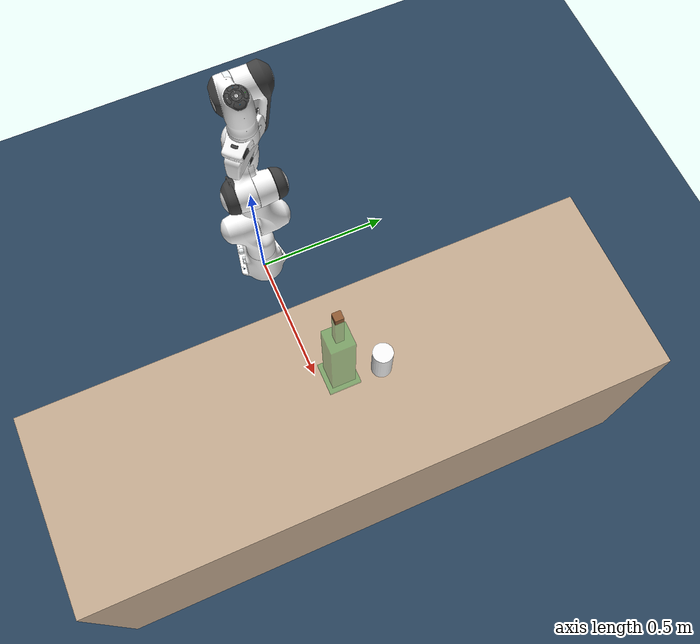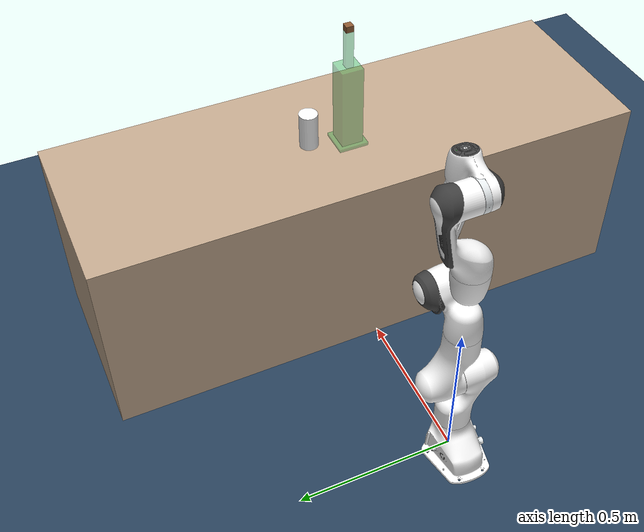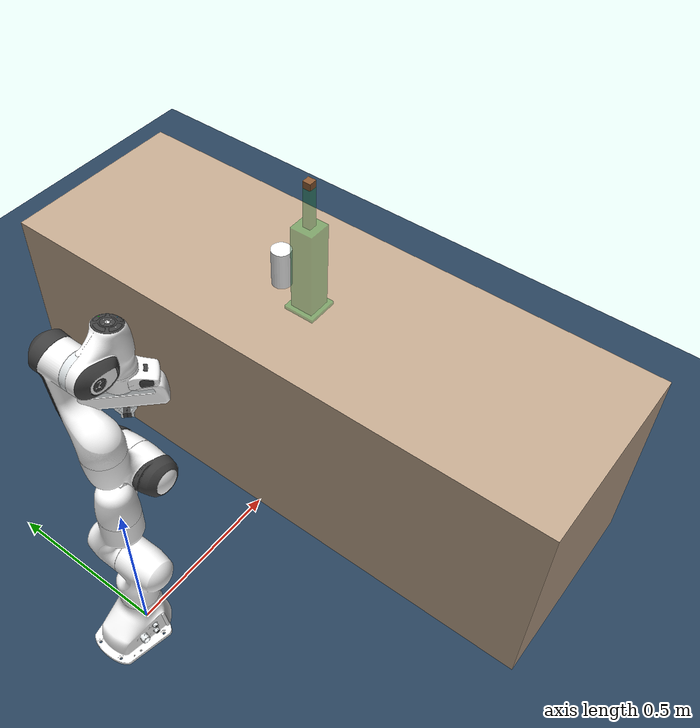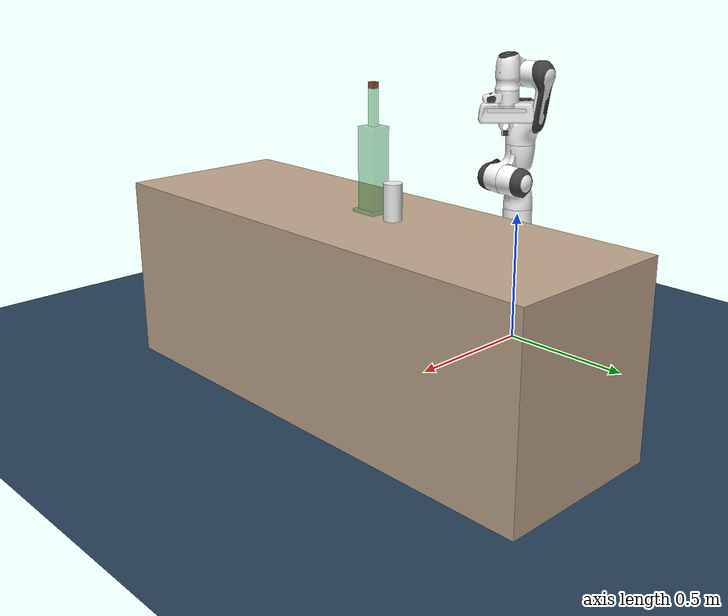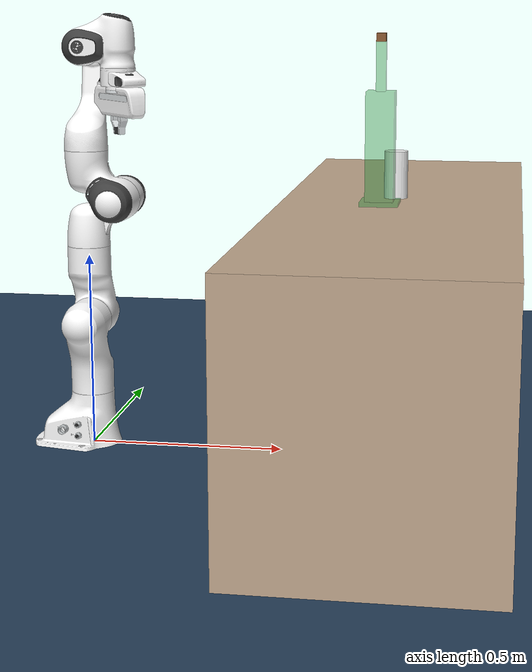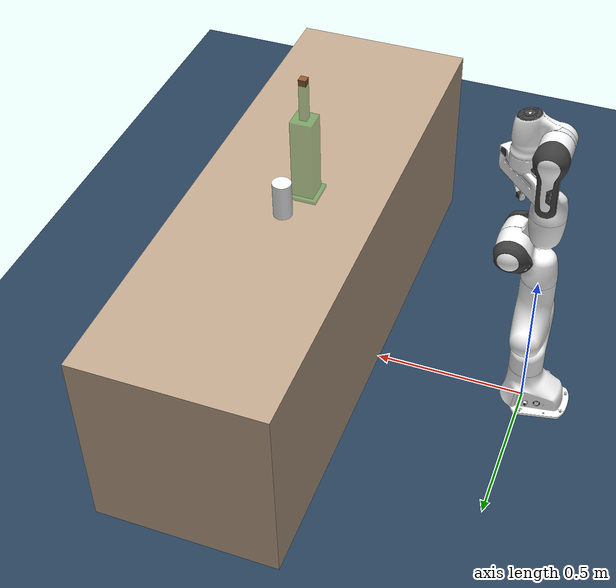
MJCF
<mujoco model="panda scene (bar table)">
  <include file="panda_nokey.xml"/>

  <statistic center="0.3 0 0.4" extent="1"/>

  <visual>
    <headlight diffuse="0.6 0.6 0.6" ambient="0.3 0.3 0.3" specular="0 0 0"/>
    <rgba haze="0.15 0.25 0.35 1"/>
    <global azimuth="120" elevation="-20"/>
  </visual>

  <!-- Enable no-slip solver and increase solver effort; reduce timestep for more robust contacts.
       Revert: remove timestep/iterations/ls_iterations to go back to defaults. -->
  <option timestep="0.0015" iterations="200" ls_iterations="60" noslip_iterations="10" noslip_tolerance="1e-6"/>

  <asset>
    <texture type="skybox" builtin="gradient" rgb1="0.3 0.5 0.7" rgb2="0 0 0" width="512" height="3072"/>
    <texture type="2d" name="groundplane" builtin="checker" mark="edge" rgb1="0.2 0.3 0.4" rgb2="0.1 0.2 0.3"
      markrgb="0.8 0.8 0.8" width="300" height="300"/>
    <material name="groundplane" texture="groundplane" texuniform="true" texrepeat="5 5" reflectance="0.2"/>

    <!-- simple solid-colored table material -->
    <material name="table_mat" rgba="0.75 0.65 0.55 1" specular="0.2" shininess="0.2"/>
    <material name="cup_mat" rgba="0.95 0.95 0.95 1" specular="0.1" shininess="0.2"/>

    <!-- translucent green glass for wine bottle -->
    <material name="glass_green" rgba="0.1 0.6 0.2 0.4" specular="0.5" shininess="0.6" reflectance="0.1"/>
    <!-- cork material for bottle top -->
    <material name="cork_mat" rgba="0.55 0.35 0.2 1" specular="0.05" shininess="0.05"/>
  </asset>

  <worldbody>
    <light pos="0 0 1.5" dir="0 0 -1" directional="true"/>
    <geom name="floor" size="0 0 0.05" type="plane" material="groundplane"/>

    <!-- table only: simple rectangular bar table in front of the robot (lowered, moved slightly away) -->
    <body name="table" pos="0.8 0.0 0.3">
      <geom type="box" size="0.3 0.9 0.35" material="table_mat" contype="1" conaffinity="1"
            friction="3.0 0.08 0.008"/>
    </body>

    <!-- square wine bottle placed on the table top (movable) -->
    <!-- New table top at z = 0.3 + 0.35 = 0.65. Body halfheight = 0.14 => center z = 0.79 -->
    <body name="wine_bottle" pos="0.75 0.0 0.79">
      <joint name="bottle_free" type="free"/>
      <!-- square bottle body (box) -->
      <!-- Mass/friction tuned for gripping: was density="2500", friction="3.0 0.08 0.008" -->
      <!-- Revert: restore density and original friction above -->
      <!-- Note: impratio not supported in your MuJoCo version; removed. -->
      <!-- Harden contact to prevent penetration. Was: solref="0.005 1" solimp="0.95 0.99 0.001" -->
      <!-- Revert: restore those solref/solimp values. -->
      <geom name="bottle_body" type="box" size="0.035 0.035 0.14" material="glass_green" mass="0.5"
            contype="1" conaffinity="1" condim="6" friction="5.408 0.2366 0.04225"
            solimp="0.95 0.995 0.0005" solref="0.004 1" />
      <!-- wider base plate to improve stability when placing the bottle down -->
      <geom name="bottle_base" type="box" size="0.048 0.048 0.005" pos="0 0 -0.135" material="glass_green"
            mass="0.02" contype="1" conaffinity="1" condim="6" friction="5.408 0.2366 0.04225"
            solimp="0.95 0.995 0.0005" solref="0.004 1" />
      <!-- square bottle neck (box) on top of body: halfheight 0.06 placed 0.20 above body center (0.14 + 0.06) -->
      <!-- Mass/friction tuned for gripping: was density="2500", friction="2.5 0.06 0.006" -->
      <!-- Revert: restore density and original friction above -->
      <!-- Note: impratio not supported in your MuJoCo version; removed. -->
      <!-- Harden contact to prevent penetration. Was: solref="0.005 1" solimp="0.95 0.99 0.001" -->
      <!-- Revert: restore those solref/solimp values. -->
      <geom name="bottle_neck" type="box" size="0.012 0.012 0.06" pos="0 0 0.20" material="glass_green"
            mass="0.09" contype="1" conaffinity="1" condim="6" friction="5.408 0.2366 0.04225"
            solimp="0.95 0.995 0.0005" solref="0.004 1" />
      <!-- small cork as box at top of neck -->
      <!-- Mass tuned for total ~0.6kg bottle: was density="700" -->
      <!-- Revert: restore density above -->
      <geom name="bottle_cork" type="box" size="0.012 0.012 0.01" pos="0 0 0.27" material="cork_mat"
            mass="0.01" contype="1" conaffinity="1" friction="2.0 0.08 0.008" />
    </body>

    <!-- add a simple cup next to the bottle -->
    <body name="cup" pos="0.78 0.12 0.71">
      <joint name="cup_free" type="free"/>
      <geom name="cup_body" type="cylinder" size="0.03 0.06" material="cup_mat" density="1200"
            contype="1" conaffinity="1" friction="3.0 0.08 0.008" />
    </body>
  </worldbody>
</mujoco>

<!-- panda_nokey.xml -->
<mujoco model="panda">
  <compiler angle="radian" meshdir="assets" autolimits="true"/>

  <option integrator="implicitfast"/>

  <default>
    <default class="panda">
      <material specular="0.5" shininess="0.25"/>
      <joint armature="0.1" damping="1" axis="0 0 1" range="-2.8973 2.8973"/>
      <general dyntype="none" biastype="affine" ctrlrange="-2.8973 2.8973" forcerange="-87 87"/>
      <default class="finger">
        <!-- Increase finger travel to open wider. Was range="0 0.04".
             Revert: set range back to 0 0.04. -->
        <joint axis="0 1 0" type="slide" range="0 0.06" frictionloss="10" stiffness="50" damping="2"/>
      </default>

      <default class="visual">
        <geom type="mesh" contype="0" conaffinity="0" group="2"/>
      </default>
      <default class="collision">
        <geom type="mesh" group="3"/>
    <!-- Harden pad contacts for non-penetration and torque transfer.
         Was: solref="0.005 1" solimp="0.95 0.99 0.001". Revert by restoring those values. -->
    <default class="fingertip_pad_collision_1">
      <geom type="box" size="0.0085 0.004 0.0085" pos="0 0.0055 0.0445" friction="3.0 0.08 0.008"/>
    </default>
    <default class="fingertip_pad_collision_2">
      <geom type="box" size="0.003 0.002 0.003" pos="0.0055 0.002 0.05" friction="3.0 0.08 0.008"/>
    </default>
    <default class="fingertip_pad_collision_3">
      <geom type="box" size="0.003 0.002 0.003" pos="-0.0055 0.002 0.05" friction="3.0 0.08 0.008"/>
    </default>
    <default class="fingertip_pad_collision_4">
      <geom type="box" size="0.003 0.002 0.0035" pos="0.0055 0.002 0.0395" friction="3.0 0.08 0.008"/>
    </default>
    <default class="fingertip_pad_collision_5">
      <geom type="box" size="0.003 0.002 0.0035" pos="-0.0055 0.002 0.0395" friction="3.0 0.08 0.008"/>
    </default>
      </default>
    </default>
  </default>

  <asset>
    <material class="panda" name="white" rgba="1 1 1 1"/>
    <material class="panda" name="off_white" rgba="0.901961 0.921569 0.929412 1"/>
    <material class="panda" name="black" rgba="0.25 0.25 0.25 1"/>
    <material class="panda" name="green" rgba="0 1 0 1"/>
    <material class="panda" name="light_blue" rgba="0.039216 0.541176 0.780392 1"/>

    <!-- Collision meshes -->
    <mesh name="link0_c" file="link0.stl"/>
    <mesh name="link1_c" file="link1.stl"/>
    <mesh name="link2_c" file="link2.stl"/>
    <mesh name="link3_c" file="link3.stl"/>
    <mesh name="link4_c" file="link4.stl"/>
    <mesh name="link5_c0" file="link5_collision_0.obj"/>
    <mesh name="link5_c1" file="link5_collision_1.obj"/>
    <mesh name="link5_c2" file="link5_collision_2.obj"/>
    <mesh name="link6_c" file="link6.stl"/>
    <mesh name="link7_c" file="link7.stl"/>
    <mesh name="hand_c" file="hand.stl"/>

    <!-- Visual meshes -->
    <mesh file="link0_0.obj"/>
    <mesh file="link0_1.obj"/>
    <mesh file="link0_2.obj"/>
    <mesh file="link0_3.obj"/>
    <mesh file="link0_4.obj"/>
    <mesh file="link0_5.obj"/>
    <mesh file="link0_7.obj"/>
    <mesh file="link0_8.obj"/>
    <mesh file="link0_9.obj"/>
    <mesh file="link0_10.obj"/>
    <mesh file="link0_11.obj"/>
    <mesh file="link1.obj"/>
    <mesh file="link2.obj"/>
    <mesh file="link3_0.obj"/>
    <mesh file="link3_1.obj"/>
    <mesh file="link3_2.obj"/>
    <mesh file="link3_3.obj"/>
    <mesh file="link4_0.obj"/>
    <mesh file="link4_1.obj"/>
    <mesh file="link4_2.obj"/>
    <mesh file="link4_3.obj"/>
    <mesh file="link5_0.obj"/>
    <mesh file="link5_1.obj"/>
    <mesh file="link5_2.obj"/>
    <mesh file="link6_0.obj"/>
    <mesh file="link6_1.obj"/>
    <mesh file="link6_2.obj"/>
    <mesh file="link6_3.obj"/>
    <mesh file="link6_4.obj"/>
    <mesh file="link6_5.obj"/>
    <mesh file="link6_6.obj"/>
    <mesh file="link6_7.obj"/>
    <mesh file="link6_8.obj"/>
    <mesh file="link6_9.obj"/>
    <mesh file="link6_10.obj"/>
    <mesh file="link6_11.obj"/>
    <mesh file="link6_12.obj"/>
    <mesh file="link6_13.obj"/>
    <mesh file="link6_14.obj"/>
    <mesh file="link6_15.obj"/>
    <mesh file="link6_16.obj"/>
    <mesh file="link7_0.obj"/>
    <mesh file="link7_1.obj"/>
    <mesh file="link7_2.obj"/>
    <mesh file="link7_3.obj"/>
    <mesh file="link7_4.obj"/>
    <mesh file="link7_5.obj"/>
    <mesh file="link7_6.obj"/>
    <mesh file="link7_7.obj"/>
    <mesh file="hand_0.obj"/>
    <mesh file="hand_1.obj"/>
    <mesh file="hand_2.obj"/>
    <mesh file="hand_3.obj"/>
    <mesh file="hand_4.obj"/>
    <mesh file="finger_0.obj"/>
    <mesh file="finger_1.obj"/>
  </asset>

  <worldbody>
    <light name="top" pos="0 0 2" mode="trackcom"/>
    <!-- Fixed camera behind the robot -->
    <camera name="behind" pos="-1.5 0 1.0" xyaxes="1 0 0   0 -1 0" fovy="60"/>
    <body name="link0" childclass="panda">
      <inertial mass="0.629769" pos="-0.041018 -0.00014 0.049974"
        fullinertia="0.00315 0.00388 0.004285 8.2904e-7 0.00015 8.2299e-6"/>
      <geom mesh="link0_0" material="off_white" class="visual"/>
      <geom mesh="link0_1" material="black" class="visual"/>
      <geom mesh="link0_2" material="off_white" class="visual"/>
      <geom mesh="link0_3" material="black" class="visual"/>
      <geom mesh="link0_4" material="off_white" class="visual"/>
      <geom mesh="link0_5" material="black" class="visual"/>
      <geom mesh="link0_7" material="white" class="visual"/>
      <geom mesh="link0_8" material="white" class="visual"/>
      <geom mesh="link0_9" material="black" class="visual"/>
      <geom mesh="link0_10" material="off_white" class="visual"/>
      <geom mesh="link0_11" material="white" class="visual"/>
      <geom mesh="link0_c" class="collision"/>
      <body name="link1" pos="0 0 0.333">
        <inertial mass="4.970684" pos="0.003875 0.002081 -0.04762"
          fullinertia="0.70337 0.70661 0.0091170 -0.00013900 0.0067720 0.019169"/>
        <joint name="joint1"/>
        <geom material="white" mesh="link1" class="visual"/>
        <geom mesh="link1_c" class="collision"/>
        <body name="link2" quat="1 -1 0 0">
          <inertial mass="0.646926" pos="-0.003141 -0.02872 0.003495"
            fullinertia="0.0079620 2.8110e-2 2.5995e-2 -3.925e-3 1.0254e-2 7.04e-4"/>
          <joint name="joint2" range="-1.7628 1.7628"/>
          <geom material="white" mesh="link2" class="visual"/>
          <geom mesh="link2_c" class="collision"/>
          <body name="link3" pos="0 -0.316 0" quat="1 1 0 0">
            <joint name="joint3"/>
            <inertial mass="3.228604" pos="2.7518e-2 3.9252e-2 -6.6502e-2"
              fullinertia="3.7242e-2 3.6155e-2 1.083e-2 -4.761e-3 -1.1396e-2 -1.2805e-2"/>
            <geom mesh="link3_0" material="white" class="visual"/>
            <geom mesh="link3_1" material="white" class="visual"/>
            <geom mesh="link3_2" material="white" class="visual"/>
            <geom mesh="link3_3" material="black" class="visual"/>
            <geom mesh="link3_c" class="collision"/>
            <body name="link4" pos="0.0825 0 0" quat="1 1 0 0">
              <inertial mass="3.587895" pos="-5.317e-2 1.04419e-1 2.7454e-2"
                fullinertia="2.5853e-2 1.9552e-2 2.8323e-2 7.796e-3 -1.332e-3 8.641e-3"/>
              <joint name="joint4" range="-3.0718 -0.0698"/>
              <geom mesh="link4_0" material="white" class="visual"/>
              <geom mesh="link4_1" material="white" class="visual"/>
              <geom mesh="link4_2" material="black" class="visual"/>
              <geom mesh="link4_3" material="white" class="visual"/>
              <geom mesh="link4_c" class="collision"/>
              <body name="link5" pos="-0.0825 0.384 0" quat="1 -1 0 0">
                <inertial mass="1.225946" pos="-1.1953e-2 4.1065e-2 -3.8437e-2"
                  fullinertia="3.5549e-2 2.9474e-2 8.627e-3 -2.117e-3 -4.037e-3 2.29e-4"/>
                <joint name="joint5"/>
                <geom mesh="link5_0" material="black" class="visual"/>
                <geom mesh="link5_1" material="white" class="visual"/>
                <geom mesh="link5_2" material="white" class="visual"/>
                <geom mesh="link5_c0" class="collision"/>
                <geom mesh="link5_c1" class="collision"/>
                <geom mesh="link5_c2" class="collision"/>
                <body name="link6" quat="1 1 0 0">
                  <inertial mass="1.666555" pos="6.0149e-2 -1.4117e-2 -1.0517e-2"
                    fullinertia="1.964e-3 4.354e-3 5.433e-3 1.09e-4 -1.158e-3 3.41e-4"/>
                  <joint name="joint6" range="-0.0175 3.7525"/>
                  <geom mesh="link6_0" material="off_white" class="visual"/>
                  <geom mesh="link6_1" material="white" class="visual"/>
                  <geom mesh="link6_2" material="black" class="visual"/>
                  <geom mesh="link6_3" material="white" class="visual"/>
                  <geom mesh="link6_4" material="white" class="visual"/>
                  <geom mesh="link6_5" material="white" class="visual"/>
                  <geom mesh="link6_6" material="white" class="visual"/>
                  <geom mesh="link6_7" material="light_blue" class="visual"/>
                  <geom mesh="link6_8" material="light_blue" class="visual"/>
                  <geom mesh="link6_9" material="black" class="visual"/>
                  <geom mesh="link6_10" material="black" class="visual"/>
                  <geom mesh="link6_11" material="white" class="visual"/>
                  <geom mesh="link6_12" material="green" class="visual"/>
                  <geom mesh="link6_13" material="white" class="visual"/>
                  <geom mesh="link6_14" material="black" class="visual"/>
                  <geom mesh="link6_15" material="black" class="visual"/>
                  <geom mesh="link6_16" material="white" class="visual"/>
                  <geom mesh="link6_c" class="collision"/>
                  <body name="link7" pos="0.088 0 0" quat="1 1 0 0">
                    <inertial mass="7.35522e-01" pos="1.0517e-2 -4.252e-3 6.1597e-2"
                      fullinertia="1.2516e-2 1.0027e-2 4.815e-3 -4.28e-4 -1.196e-3 -7.41e-4"/>
                    <joint name="joint7"/>
                    <geom mesh="link7_0" material="white" class="visual"/>
                    <geom mesh="link7_1" material="black" class="visual"/>
                    <geom mesh="link7_2" material="black" class="visual"/>
                    <geom mesh="link7_3" material="black" class="visual"/>
                    <geom mesh="link7_4" material="black" class="visual"/>
                    <geom mesh="link7_5" material="black" class="visual"/>
                    <geom mesh="link7_6" material="black" class="visual"/>
                    <geom mesh="link7_7" material="white" class="visual"/>
                    <geom mesh="link7_c" class="collision"/>
                    <body name="hand" pos="0 0 0.107" quat="0.9238795 0 0 -0.3826834">
                      <!-- Wrist-mounted camera on the hand -->
                      <camera name="cam1" pos="0 0 0.120" xyaxes="1 0 0   0 -1 0" fovy="60"/>
                      <inertial mass="0.73" pos="-0.01 0 0.03" diaginertia="0.001 0.0025 0.0017"/>
                      <geom mesh="hand_0" material="off_white" class="visual"/>
                      <geom mesh="hand_1" material="black" class="visual"/>
                      <geom mesh="hand_2" material="black" class="visual"/>
                      <geom mesh="hand_3" material="white" class="visual"/>
                      <geom mesh="hand_4" material="off_white" class="visual"/>
                      <geom mesh="hand_c" class="collision"/>
                      <site name="ee_site" pos="0 0 0.10365" size="0.005" rgba="0 1 0 1"/>
                      <body name="left_finger" pos="0 0 0.0584">
                        <inertial mass="0.015" pos="0 0 0" diaginertia="2.375e-6 2.375e-6 7.5e-7"/>
                        <joint name="finger_joint1" class="finger"/>
                        <geom mesh="finger_0" material="off_white" class="visual"/>
                        <geom mesh="finger_1" material="black" class="visual"/>
                        <geom mesh="finger_0" class="collision"/>
                        <geom class="fingertip_pad_collision_1"/>
                        <geom class="fingertip_pad_collision_2"/>
                        <geom class="fingertip_pad_collision_3"/>
                        <geom class="fingertip_pad_collision_4"/>
                        <geom class="fingertip_pad_collision_5"/>
                      </body>
                      <body name="right_finger" pos="0 0 0.0584" quat="0 0 0 1">
                        <inertial mass="0.015" pos="0 0 0" diaginertia="2.375e-6 2.375e-6 7.5e-7"/>
                        <joint name="finger_joint2" class="finger"/>
                        <geom mesh="finger_0" material="off_white" class="visual"/>
                        <geom mesh="finger_1" material="black" class="visual"/>
                        <geom mesh="finger_0" class="collision"/>
                        <geom class="fingertip_pad_collision_1"/>
                        <geom class="fingertip_pad_collision_2"/>
                        <geom class="fingertip_pad_collision_3"/>
                        <geom class="fingertip_pad_collision_4"/>
                        <geom class="fingertip_pad_collision_5"/>
                      </body>
                    </body>
                  </body>
                </body>
              </body>
            </body>
          </body>
        </body>
      </body>
    </body>
  </worldbody>

  <tendon>
    <fixed name="split">
      <joint joint="finger_joint1" coef="0.5"/>
      <joint joint="finger_joint2" coef="0.5"/>
    </fixed>
  </tendon>

  <equality>
    <joint joint1="finger_joint1" joint2="finger_joint2" solimp="0.95 0.99 0.001" solref="0.005 1"/>
  </equality>

  <actuator>
    <general class="panda" name="actuator1" joint="joint1" gainprm="4500" biasprm="0 -4500 -450"/>
    <general class="panda" name="actuator2" joint="joint2" gainprm="4500" biasprm="0 -4500 -450"
      ctrlrange="-1.7628 1.7628"/>
    <general class="panda" name="actuator3" joint="joint3" gainprm="3500" biasprm="0 -3500 -350"/>
    <general class="panda" name="actuator4" joint="joint4" gainprm="3500" biasprm="0 -3500 -350"
      ctrlrange="-3.0718 -0.0698"/>
    <general class="panda" name="actuator5" joint="joint5" gainprm="2000" biasprm="0 -2000 -200" forcerange="-12 12"/>
    <general class="panda" name="actuator6" joint="joint6" gainprm="2000" biasprm="0 -2000 -200" forcerange="-12 12"
      ctrlrange="-0.0175 3.7525"/>
    <general class="panda" name="actuator7" joint="joint7" gainprm="2000" biasprm="0 -2000 -200" forcerange="-40 40"/>
    <!-- Remap original ctrlrange (0, 0.04) to (0, 255): 0.04 * 100 / 255 = 0.01568627451 -->
    <!-- Switch to position control on tendon for reliable full open/close.
         Match actuator control range to increased finger travel. -->
    <position class="panda" name="actuator8" tendon="split"
      ctrlrange="0 0.06" kp="2000" kv="20" forcerange="-300 300"/>
  </actuator>

</mujoco>
